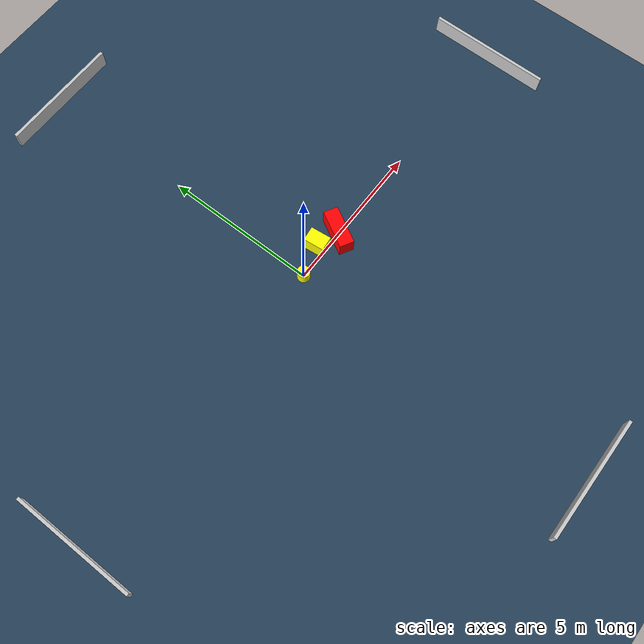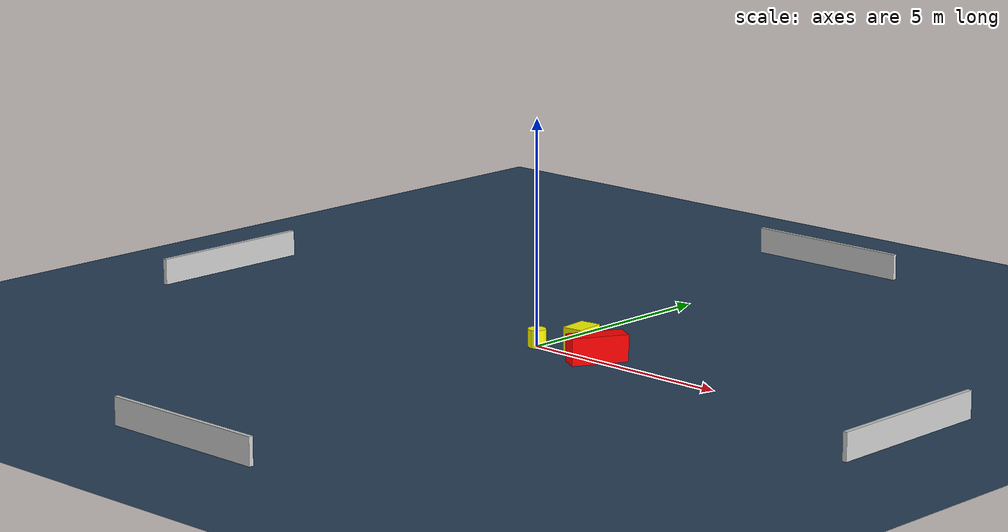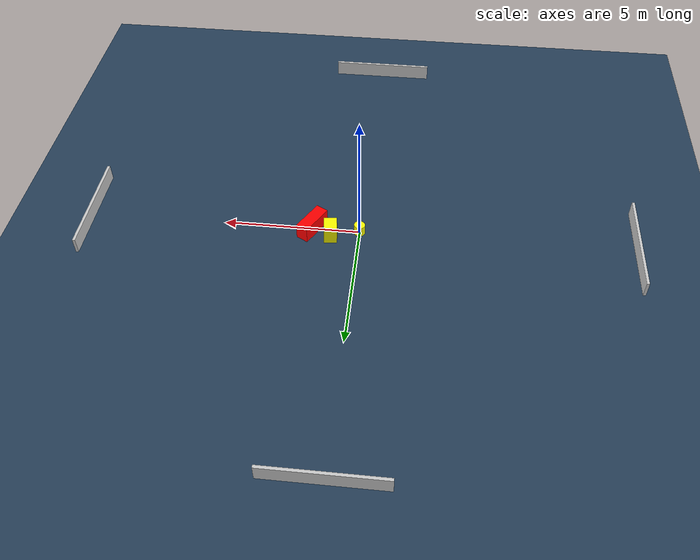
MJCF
<?xml version="1.0" ?>
<mujoco model="generated_environment">
  <option timestep="0.01" integrator="RK4" cone="elliptic"/>
  <default>
    <geom density="1"/>
  </default>
  <asset>
    <texture builtin="gradient" height="3072" name="skybox" rgb1="0.3 0.5 0.7" rgb2="0 0 0" type="skybox" width="512"/>
    <texture builtin="checker" height="300" name="groundplane" rgb1="0.2 0.3 0.4" rgb2="0.1 0.2 0.3" type="2d" width="300"/>
    <material name="groundplane" reflectance="0.2" texrepeat="5 5" texture="groundplane"/>
  </asset>
  <worldbody>
    <light dir="0 0 -1" directional="true" pos="0 0 1.5"/>
    <geom condim="3" friction="0.5 0.005 0.001" material="groundplane" name="floor" pos="0 0 0" size="0 0 0.05" type="plane"/>
    <body name="walls">
      <geom name="wall_1" condim="4" pos="-10.0 0.0 0.3" rgba="0.800000011920929 0.800000011920929 0.800000011920929 1.0" size="0.05 2.0 0.3" type="box"/>
      <geom name="wall_2" condim="4" pos="10.0 0.0 0.3" rgba="0.800000011920929 0.800000011920929 0.800000011920929 1.0" size="0.05 2.0 0.3" type="box"/>
      <geom name="wall_3" condim="4" pos="0.0 -10.0 0.3" rgba="0.800000011920929 0.800000011920929 0.800000011920929 1.0" size="2.0 0.05 0.3" type="box"/>
      <geom name="wall_4" condim="4" pos="0.0 10.0 0.3" rgba="0.800000011920929 0.800000011920929 0.800000011920929 1.0" size="2.0 0.05 0.3" type="box"/>
    </body>
    <body name="robot">
      <joint name="joint_x" type="slide" pos="0 0 0" axis="1 0 0"/>
      <joint name="joint_y" type="slide" pos="0 0 0" axis="0 1 0"/>
      <geom name="robot" type="cylinder" pos="0.0 0.0 0.2" size="0.2 0.2 0.0" mass="5.0" friction="1.0 0.005 0.0001" condim="4" rgba="1.0 1.0 0.0 1.0"/>
    </body>
    <body name="obstacle_1_movable">
      <geom name="obstacle_1_movable" condim="4" pos="1.0378767436092067 0.2839718090227363 0.3" euler="0 0 96.18293662650521" friction="0.0 0.005 0.001" rgba="1.0 1.0 0.0 1.0" size="0.33413800826009876 0.23593003460933312 0.3" type="box" mass="0.1"/>
      <joint type="free"/>
    </body>
    <body name="obstacle_2_static">
      <geom name="obstacle_2_static" condim="4" pos="1.7476011703474796 0.010246156681019074 0.3" euler="0 0 150.6807057913834" friction="0.0 0.005 0.001" rgba="1.0 0.0 0.0 1.0" size="0.234895195344567 0.6288318022424921 0.3" type="box"/>
    </body>
  </worldbody>
  <actuator>
    <motor name="actuator_x" joint="joint_x" gear="1" ctrlrange="-1 1"/>
    <motor name="actuator_y" joint="joint_y" gear="1" ctrlrange="-1 1"/>
  </actuator>
</mujoco>
